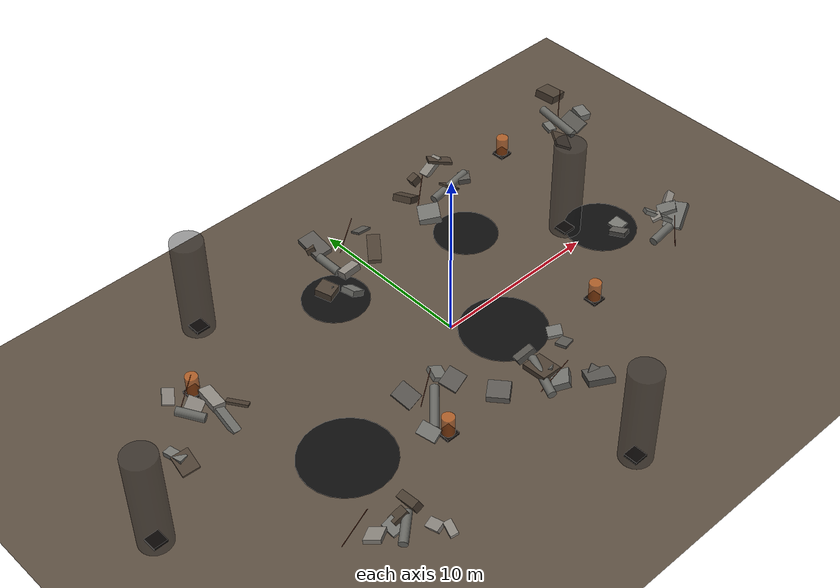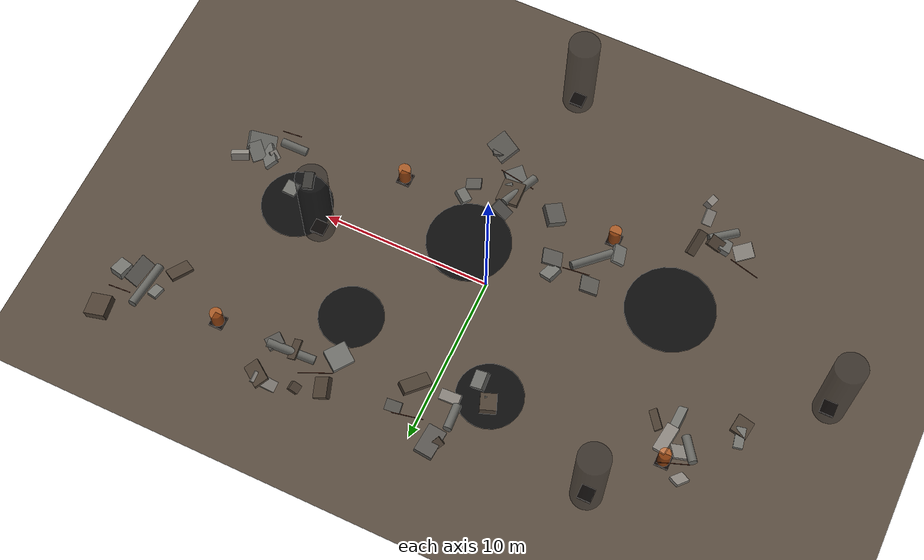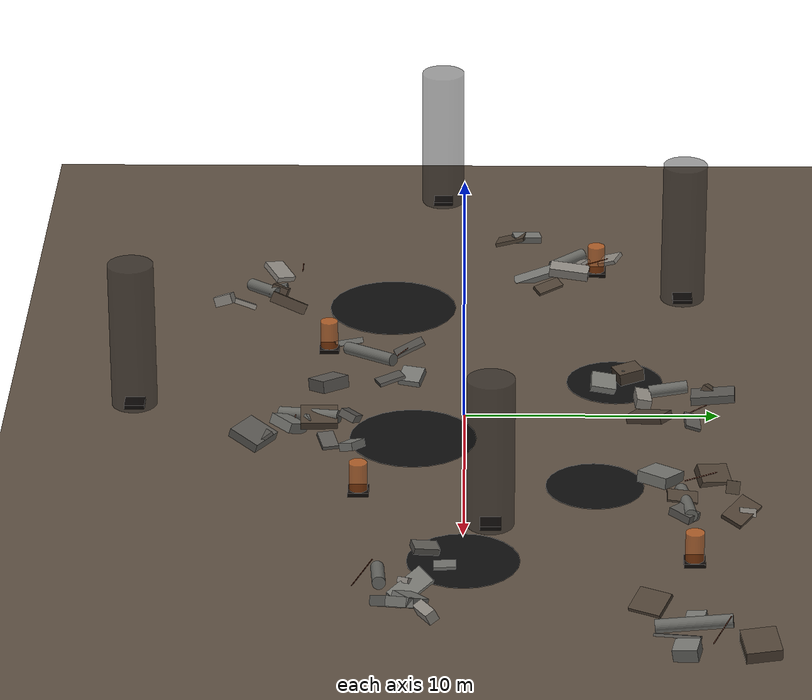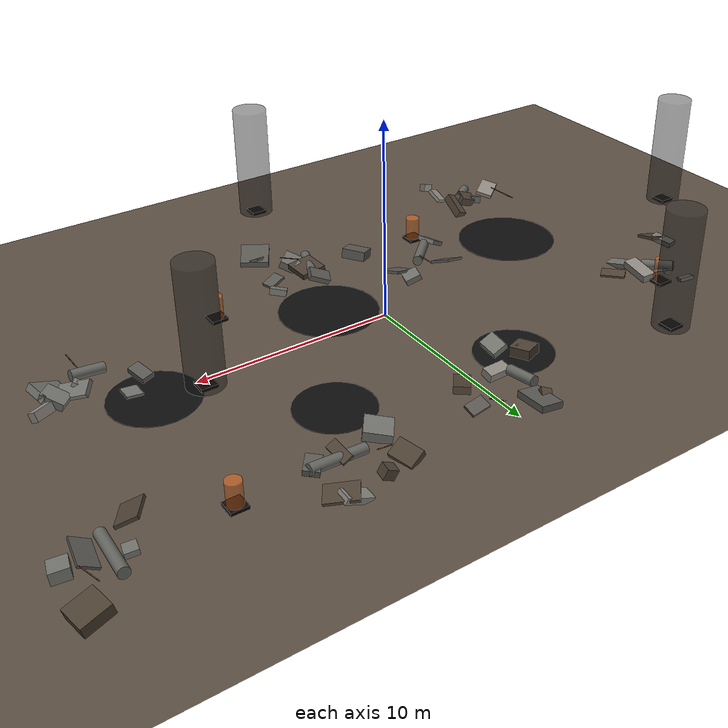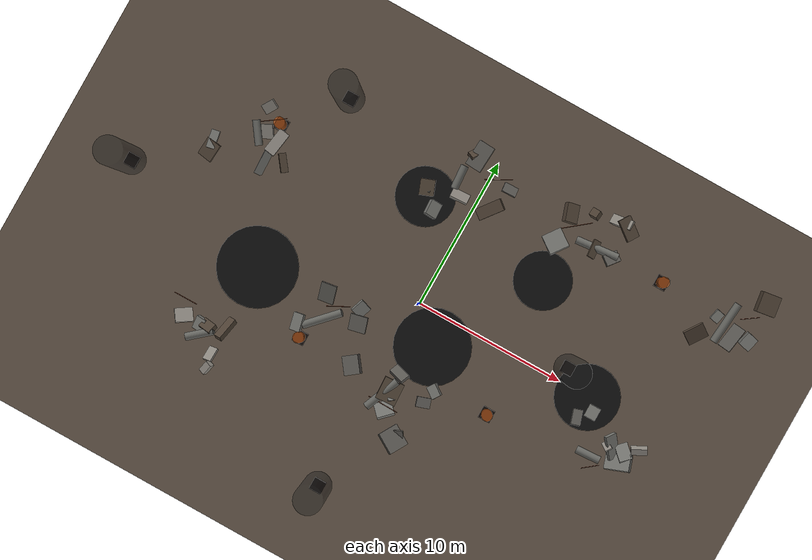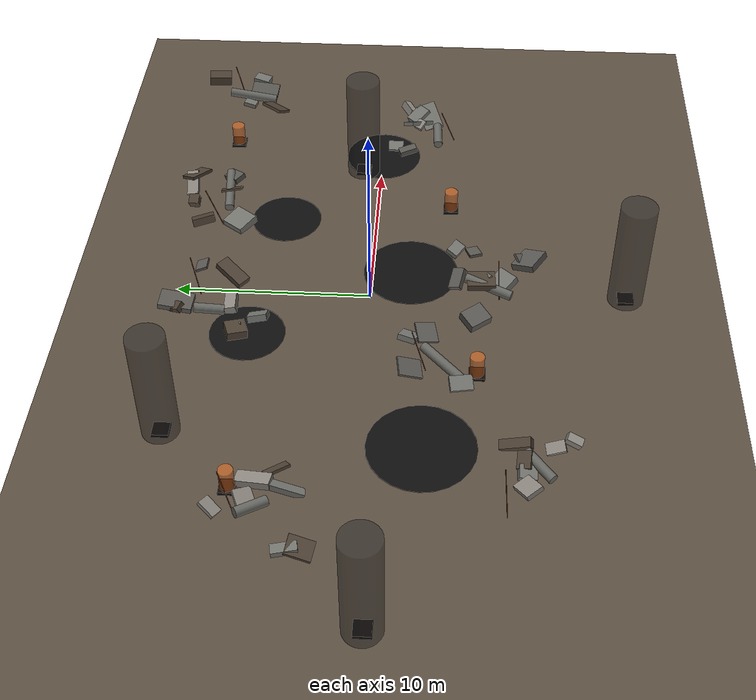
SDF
<sdf version="1.6">
 <world name="default">
  <physics name="default_physics" default="0" type="ode">
   <gravity>0 0 -9.8066</gravity>
   <ode>
    <solver>
     <type>quick</type>
     <iters>10</iters>
     <sor>1.3</sor>
     <use_dynamic_moi_rescaling>0</use_dynamic_moi_rescaling>
    </solver>
    <constraints>
     <cfm>0</cfm>
     <erp>0.2</erp>
     <contact_max_correcting_vel>100</contact_max_correcting_vel>
     <contact_surface_layer>0.001</contact_surface_layer>
    </constraints>
   </ode>
   <max_step_size>0.004</max_step_size>
   <real_time_factor>1</real_time_factor>
   <real_time_update_rate>250</real_time_update_rate>
   <magnetic_field>6.0e-6 2.3e-5 -4.2e-5</magnetic_field>
  </physics>
  <scene><ambient>0.3 0.28 0.27 1</ambient><background>0.45 0.42 0.4 1</background><shadows>1</shadows></scene>
  <model name="ground_plane">
   <static>true</static>
   <link name="link">
    <collision name="collision">
     <geometry><plane><normal>0 0 1</normal><size>100 100</size></plane></geometry>
    </collision>
    <visual name="visual">
     <geometry><plane><normal>0 0 1</normal><size>100 100</size></plane></geometry>
     <material>
      <ambient>0.35 0.3 0.25 1</ambient>
      <diffuse>0.35 0.3 0.25 1</diffuse>
      <specular>0.05 0.05 0.05 1</specular>
     </material>
    </visual>
    <inertial>
     <mass>1</mass>
     <inertia><ixx>1</ixx><ixy>0</ixy><ixz>0</ixz><iyy>1</iyy><iyz>0</iyz><izz>1</izz></inertia>
    </inertial>
   </link>
  </model>
  <model name="rubble_0">
   <static>true</static>
   <pose>-11.76 3.47 0.18 0.08 0.41 0.67</pose>
   <link name="link">
    <collision name="collision"><geometry><box><size>0.47 1.22 0.14</size></box></geometry></collision>
    <visual name="visual">
     <geometry><box><size>0.47 1.22 0.14</size></box></geometry>
     <material>
      <ambient>0.3 0.25 0.2 1</ambient>
      <diffuse>0.3 0.25 0.2 1</diffuse>
      <specular>0.05 0.05 0.05 1</specular>
     </material>
    </visual>
   </link>
  </model>
  <model name="rubble_1">
   <static>true</static>
   <pose>-16.15 1.95 0.38 -0.28 0.13 2.98</pose>
   <link name="link">
    <collision name="collision"><geometry><box><size>0.99 1.23 0.15</size></box></geometry></collision>
    <visual name="visual">
     <geometry><box><size>0.99 1.23 0.15</size></box></geometry>
     <material>
      <ambient>0.3 0.25 0.2 1</ambient>
      <diffuse>0.3 0.25 0.2 1</diffuse>
      <specular>0.05 0.05 0.05 1</specular>
     </material>
    </visual>
   </link>
  </model>
  <model name="rubble_2">
   <static>true</static>
   <pose>-16.25 2.61 0.42 0.04 0.07 1.76</pose>
   <link name="link">
    <collision name="collision"><geometry><box><size>1.18 0.53 0.27</size></box></geometry></collision>
    <visual name="visual">
     <geometry><box><size>1.18 0.53 0.27</size></box></geometry>
     <material>
      <ambient>0.45 0.45 0.43 1</ambient>
      <diffuse>0.45 0.45 0.43 1</diffuse>
      <specular>0.05 0.05 0.05 1</specular>
     </material>
    </visual>
   </link>
  </model>
  <model name="rubble_3">
   <static>true</static>
   <pose>-13.59 4.69 0.32 -0.44 -0.29 2.14</pose>
   <link name="link">
    <collision name="collision"><geometry><box><size>0.92 0.95 0.13</size></box></geometry></collision>
    <visual name="visual">
     <geometry><box><size>0.92 0.95 0.13</size></box></geometry>
     <material>
      <ambient>0.55 0.53 0.5 1</ambient>
      <diffuse>0.55 0.53 0.5 1</diffuse>
      <specular>0.05 0.05 0.05 1</specular>
     </material>
    </visual>
   </link>
  </model>
  <model name="rubble_4">
   <static>true</static>
   <pose>-14.17 6.12 0.35 0.28 -0.42 0.94</pose>
   <link name="link">
    <collision name="collision"><geometry><box><size>0.91 0.65 0.17</size></box></geometry></collision>
    <visual name="visual">
     <geometry><box><size>0.91 0.65 0.17</size></box></geometry>
     <material>
      <ambient>0.55 0.53 0.5 1</ambient>
      <diffuse>0.55 0.53 0.5 1</diffuse>
      <specular>0.05 0.05 0.05 1</specular>
     </material>
    </visual>
   </link>
  </model>
  <model name="rubble_5">
   <static>true</static>
   <pose>-12.85 2.94 0.17 0.26 -0.35 1.54</pose>
   <link name="link">
    <collision name="collision"><geometry><box><size>1.77 0.52 0.27</size></box></geometry></collision>
    <visual name="visual">
     <geometry><box><size>1.77 0.52 0.27</size></box></geometry>
     <material>
      <ambient>0.45 0.45 0.43 1</ambient>
      <diffuse>0.45 0.45 0.43 1</diffuse>
      <specular>0.05 0.05 0.05 1</specular>
     </material>
    </visual>
   </link>
  </model>
  <model name="rubble_6">
   <static>true</static>
   <pose>-12.68 4.37 0.49 0.09 0.08 1.43</pose>
   <link name="link">
    <collision name="collision"><geometry><box><size>1.63 0.71 0.38</size></box></geometry></collision>
    <visual name="visual">
     <geometry><box><size>1.63 0.71 0.38</size></box></geometry>
     <material>
      <ambient>0.55 0.53 0.5 1</ambient>
      <diffuse>0.55 0.53 0.5 1</diffuse>
      <specular>0.05 0.05 0.05 1</specular>
     </material>
    </visual>
   </link>
  </model>
  <model name="column_7">
   <static>true</static>
   <pose>-14.05 4.33 0.35 0 1.45 2.17</pose>
   <link name="link">
    <collision name="collision">
     <geometry><cylinder><radius>0.25</radius><length>1.59</length></cylinder></geometry>
    </collision>
    <visual name="visual">
     <geometry><cylinder><radius>0.25</radius><length>1.59</length></cylinder></geometry>
     <material>
      <ambient>0.4 0.4 0.38 1</ambient>
      <diffuse>0.4 0.4 0.38 1</diffuse>
      <specular>0.05 0.05 0.05 1</specular>
     </material>
    </visual>
   </link>
  </model>
  <model name="rebar_8">
   <static>true</static>
   <pose>-13.56 5.48 0.5 0.3 1.04 0.88</pose>
   <link name="link">
    <collision name="collision">
     <geometry><cylinder><radius>0.02</radius><length>2.2</length></cylinder></geometry>
    </collision>
    <visual name="visual">
     <geometry><cylinder><radius>0.02</radius><length>2.2</length></cylinder></geometry>
     <material>
      <ambient>0.35 0.15 0.08 1</ambient>
      <diffuse>0.35 0.15 0.08 1</diffuse>
      <specular>0.05 0.05 0.05 1</specular>
     </material>
    </visual>
   </link>
  </model>
  <model name="rubble_9">
   <static>true</static>
   <pose>0.94 7.24 0.45 -0.01 -0.28 0.9</pose>
   <link name="link">
    <collision name="collision"><geometry><box><size>1.72 0.76 0.34</size></box></geometry></collision>
    <visual name="visual">
     <geometry><box><size>1.72 0.76 0.34</size></box></geometry>
     <material>
      <ambient>0.3 0.25 0.2 1</ambient>
      <diffuse>0.3 0.25 0.2 1</diffuse>
      <specular>0.05 0.05 0.05 1</specular>
     </material>
    </visual>
   </link>
  </model>
  <model name="rubble_10">
   <static>true</static>
   <pose>-1.55 9.86 0.26 0.38 0.32 2.71</pose>
   <link name="link">
    <collision name="collision"><geometry><box><size>0.51 0.85 0.32</size></box></geometry></collision>
    <visual name="visual">
     <geometry><box><size>0.51 0.85 0.32</size></box></geometry>
     <material>
      <ambient>0.3 0.25 0.2 1</ambient>
      <diffuse>0.3 0.25 0.2 1</diffuse>
      <specular>0.05 0.05 0.05 1</specular>
     </material>
    </visual>
   </link>
  </model>
  <model name="rubble_11">
   <static>true</static>
   <pose>1.43 8.91 0.48 -0.35 0.16 0.04</pose>
   <link name="link">
    <collision name="collision"><geometry><box><size>0.93 0.63 0.13</size></box></geometry></collision>
    <visual name="visual">
     <geometry><box><size>0.93 0.63 0.13</size></box></geometry>
     <material>
      <ambient>0.35 0.34 0.32 1</ambient>
      <diffuse>0.35 0.34 0.32 1</diffuse>
      <specular>0.05 0.05 0.05 1</specular>
     </material>
    </visual>
   </link>
  </model>
  <model name="rubble_12">
   <static>true</static>
   <pose>-2.19 5.52 0.4 0.45 0.19 1.62</pose>
   <link name="link">
    <collision name="collision"><geometry><box><size>0.99 0.77 0.33</size></box></geometry></collision>
    <visual name="visual">
     <geometry><box><size>0.99 0.77 0.33</size></box></geometry>
     <material>
      <ambient>0.45 0.45 0.43 1</ambient>
      <diffuse>0.45 0.45 0.43 1</diffuse>
      <specular>0.05 0.05 0.05 1</specular>
     </material>
    </visual>
   </link>
  </model>
  <model name="rubble_13">
   <static>true</static>
   <pose>-1.22 9.85 0.31 -0.1 -0.11 1.51</pose>
   <link name="link">
    <collision name="collision"><geometry><box><size>1.73 1.08 0.32</size></box></geometry></collision>
    <visual name="visual">
     <geometry><box><size>1.73 1.08 0.32</size></box></geometry>
     <material>
      <ambient>0.35 0.34 0.32 1</ambient>
      <diffuse>0.35 0.34 0.32 1</diffuse>
      <specular>0.05 0.05 0.05 1</specular>
     </material>
    </visual>
   </link>
  </model>
  <model name="rubble_14">
   <static>true</static>
   <pose>-3.16 6.54 0.3 -0.5 -0.35 0.32</pose>
   <link name="link">
    <collision name="collision"><geometry><box><size>0.63 0.74 0.12</size></box></geometry></collision>
    <visual name="visual">
     <geometry><box><size>0.63 0.74 0.12</size></box></geometry>
     <material>
      <ambient>0.45 0.45 0.43 1</ambient>
      <diffuse>0.45 0.45 0.43 1</diffuse>
      <specular>0.05 0.05 0.05 1</specular>
     </material>
    </visual>
   </link>
  </model>
  <model name="rubble_15">
   <static>true</static>
   <pose>-3.15 6.54 0.35 0.1 -0.03 0.36</pose>
   <link name="link">
    <collision name="collision"><geometry><box><size>0.93 1.03 0.48</size></box></geometry></collision>
    <visual name="visual">
     <geometry><box><size>0.93 1.03 0.48</size></box></geometry>
     <material>
      <ambient>0.3 0.25 0.2 1</ambient>
      <diffuse>0.3 0.25 0.2 1</diffuse>
      <specular>0.05 0.05 0.05 1</specular>
     </material>
    </visual>
   </link>
  </model>
  <model name="rubble_16">
   <static>true</static>
   <pose>-1.1 7.06 0.23 -0.02 0.19 1.62</pose>
   <link name="link">
    <collision name="collision"><geometry><box><size>0.6 1.15 0.4</size></box></geometry></collision>
    <visual name="visual">
     <geometry><box><size>0.6 1.15 0.4</size></box></geometry>
     <material>
      <ambient>0.55 0.53 0.5 1</ambient>
      <diffuse>0.55 0.53 0.5 1</diffuse>
      <specular>0.05 0.05 0.05 1</specular>
     </material>
    </visual>
   </link>
  </model>
  <model name="column_17">
   <static>true</static>
   <pose>-1.71 8.09 0.35 0 1.45 1.64</pose>
   <link name="link">
    <collision name="collision">
     <geometry><cylinder><radius>0.25</radius><length>1.54</length></cylinder></geometry>
    </collision>
    <visual name="visual">
     <geometry><cylinder><radius>0.25</radius><length>1.54</length></cylinder></geometry>
     <material>
      <ambient>0.4 0.4 0.38 1</ambient>
      <diffuse>0.4 0.4 0.38 1</diffuse>
      <specular>0.05 0.05 0.05 1</specular>
     </material>
    </visual>
   </link>
  </model>
  <model name="rebar_18">
   <static>true</static>
   <pose>0.44 9.09 0.5 0.3 0.93 0.81</pose>
   <link name="link">
    <collision name="collision">
     <geometry><cylinder><radius>0.02</radius><length>2.2</length></cylinder></geometry>
    </collision>
    <visual name="visual">
     <geometry><cylinder><radius>0.02</radius><length>2.2</length></cylinder></geometry>
     <material>
      <ambient>0.35 0.15 0.08 1</ambient>
      <diffuse>0.35 0.15 0.08 1</diffuse>
      <specular>0.05 0.05 0.05 1</specular>
     </material>
    </visual>
   </link>
  </model>
  <model name="rubble_19">
   <static>true</static>
   <pose>9.04 8.28 0.45 0.14 0.11 2.48</pose>
   <link name="link">
    <collision name="collision"><geometry><box><size>0.71 0.94 0.3</size></box></geometry></collision>
    <visual name="visual">
     <geometry><box><size>0.71 0.94 0.3</size></box></geometry>
     <material>
      <ambient>0.35 0.34 0.32 1</ambient>
      <diffuse>0.35 0.34 0.32 1</diffuse>
      <specular>0.05 0.05 0.05 1</specular>
     </material>
    </visual>
   </link>
  </model>
  <model name="rubble_20">
   <static>true</static>
   <pose>8.53 10.59 0.26 -0.14 -0.47 0.09</pose>
   <link name="link">
    <collision name="collision"><geometry><box><size>1.44 0.63 0.31</size></box></geometry></collision>
    <visual name="visual">
     <geometry><box><size>1.44 0.63 0.31</size></box></geometry>
     <material>
      <ambient>0.55 0.53 0.5 1</ambient>
      <diffuse>0.55 0.53 0.5 1</diffuse>
      <specular>0.05 0.05 0.05 1</specular>
     </material>
    </visual>
   </link>
  </model>
  <model name="rubble_21">
   <static>true</static>
   <pose>5.47 9.53 0.19 -0.15 0.47 0.25</pose>
   <link name="link">
    <collision name="collision"><geometry><box><size>0.88 1.21 0.39</size></box></geometry></collision>
    <visual name="visual">
     <geometry><box><size>0.88 1.21 0.39</size></box></geometry>
     <material>
      <ambient>0.3 0.25 0.2 1</ambient>
      <diffuse>0.3 0.25 0.2 1</diffuse>
      <specular>0.05 0.05 0.05 1</specular>
     </material>
    </visual>
   </link>
  </model>
  <model name="rubble_22">
   <static>true</static>
   <pose>5.48 7.52 0.18 -0.02 0.15 2.51</pose>
   <link name="link">
    <collision name="collision"><geometry><box><size>1.27 1.3 0.44</size></box></geometry></collision>
    <visual name="visual">
     <geometry><box><size>1.27 1.3 0.44</size></box></geometry>
     <material>
      <ambient>0.45 0.45 0.43 1</ambient>
      <diffuse>0.45 0.45 0.43 1</diffuse>
      <specular>0.05 0.05 0.05 1</specular>
     </material>
    </visual>
   </link>
  </model>
  <model name="rubble_23">
   <static>true</static>
   <pose>9.05 10.41 0.54 0.29 -0.17 2.51</pose>
   <link name="link">
    <collision name="collision"><geometry><box><size>1.45 0.88 0.17</size></box></geometry></collision>
    <visual name="visual">
     <geometry><box><size>1.45 0.88 0.17</size></box></geometry>
     <material>
      <ambient>0.3 0.25 0.2 1</ambient>
      <diffuse>0.3 0.25 0.2 1</diffuse>
      <specular>0.05 0.05 0.05 1</specular>
     </material>
    </visual>
   </link>
  </model>
  <model name="rubble_24">
   <static>true</static>
   <pose>6.82 10.22 0.41 -0.47 0.09 1.46</pose>
   <link name="link">
    <collision name="collision"><geometry><box><size>0.52 0.56 0.5</size></box></geometry></collision>
    <visual name="visual">
     <geometry><box><size>0.52 0.56 0.5</size></box></geometry>
     <material>
      <ambient>0.3 0.25 0.2 1</ambient>
      <diffuse>0.3 0.25 0.2 1</diffuse>
      <specular>0.05 0.05 0.05 1</specular>
     </material>
    </visual>
   </link>
  </model>
  <model name="rubble_25">
   <static>true</static>
   <pose>7.79 8.25 0.52 0.47 0.15 1.65</pose>
   <link name="link">
    <collision name="collision"><geometry><box><size>1.17 0.53 0.11</size></box></geometry></collision>
    <visual name="visual">
     <geometry><box><size>1.17 0.53 0.11</size></box></geometry>
     <material>
      <ambient>0.3 0.25 0.2 1</ambient>
      <diffuse>0.3 0.25 0.2 1</diffuse>
      <specular>0.05 0.05 0.05 1</specular>
     </material>
    </visual>
   </link>
  </model>
  <model name="column_26">
   <static>true</static>
   <pose>7.97 8.39 0.35 0 1.45 0.09</pose>
   <link name="link">
    <collision name="collision">
     <geometry><cylinder><radius>0.25</radius><length>2.81</length></cylinder></geometry>
    </collision>
    <visual name="visual">
     <geometry><cylinder><radius>0.25</radius><length>2.81</length></cylinder></geometry>
     <material>
      <ambient>0.4 0.4 0.38 1</ambient>
      <diffuse>0.4 0.4 0.38 1</diffuse>
      <specular>0.05 0.05 0.05 1</specular>
     </material>
    </visual>
   </link>
  </model>
  <model name="rebar_27">
   <static>true</static>
   <pose>6.14 9.0 0.5 0.3 0.99 1.01</pose>
   <link name="link">
    <collision name="collision">
     <geometry><cylinder><radius>0.02</radius><length>2.2</length></cylinder></geometry>
    </collision>
    <visual name="visual">
     <geometry><cylinder><radius>0.02</radius><length>2.2</length></cylinder></geometry>
     <material>
      <ambient>0.35 0.15 0.08 1</ambient>
      <diffuse>0.35 0.15 0.08 1</diffuse>
      <specular>0.05 0.05 0.05 1</specular>
     </material>
    </visual>
   </link>
  </model>
  <model name="rubble_28">
   <static>true</static>
   <pose>2.67 -8.2 0.5 0.32 0.02 2.6</pose>
   <link name="link">
    <collision name="collision"><geometry><box><size>1.44 1.3 0.36</size></box></geometry></collision>
    <visual name="visual">
     <geometry><box><size>1.44 1.3 0.36</size></box></geometry>
     <material>
      <ambient>0.35 0.34 0.32 1</ambient>
      <diffuse>0.35 0.34 0.32 1</diffuse>
      <specular>0.05 0.05 0.05 1</specular>
     </material>
    </visual>
   </link>
  </model>
  <model name="rubble_29">
   <static>true</static>
   <pose>1.16 -5.88 0.34 -0.5 0.3 0.54</pose>
   <link name="link">
    <collision name="collision"><geometry><box><size>0.43 0.84 0.17</size></box></geometry></collision>
    <visual name="visual">
     <geometry><box><size>0.43 0.84 0.17</size></box></geometry>
     <material>
      <ambient>0.45 0.45 0.43 1</ambient>
      <diffuse>0.45 0.45 0.43 1</diffuse>
      <specular>0.05 0.05 0.05 1</specular>
     </material>
    </visual>
   </link>
  </model>
  <model name="rubble_30">
   <static>true</static>
   <pose>1.28 -6.87 0.26 -0.39 0.06 0.78</pose>
   <link name="link">
    <collision name="collision"><geometry><box><size>1.13 0.96 0.41</size></box></geometry></collision>
    <visual name="visual">
     <geometry><box><size>1.13 0.96 0.41</size></box></geometry>
     <material>
      <ambient>0.45 0.45 0.43 1</ambient>
      <diffuse>0.45 0.45 0.43 1</diffuse>
      <specular>0.05 0.05 0.05 1</specular>
     </material>
    </visual>
   </link>
  </model>
  <model name="rubble_31">
   <static>true</static>
   <pose>1.04 -5.69 0.43 0.11 0.01 1.61</pose>
   <link name="link">
    <collision name="collision"><geometry><box><size>1.46 1.31 0.28</size></box></geometry></collision>
    <visual name="visual">
     <geometry><box><size>1.46 1.31 0.28</size></box></geometry>
     <material>
      <ambient>0.3 0.25 0.2 1</ambient>
      <diffuse>0.3 0.25 0.2 1</diffuse>
      <specular>0.05 0.05 0.05 1</specular>
     </material>
    </visual>
   </link>
  </model>
  <model name="rubble_32">
   <static>true</static>
   <pose>1.04 -4.46 0.51 0.38 0.43 2.9</pose>
   <link name="link">
    <collision name="collision"><geometry><box><size>1.11 0.65 0.31</size></box></geometry></collision>
    <visual name="visual">
     <geometry><box><size>1.11 0.65 0.31</size></box></geometry>
     <material>
      <ambient>0.35 0.34 0.32 1</ambient>
      <diffuse>0.35 0.34 0.32 1</diffuse>
      <specular>0.05 0.05 0.05 1</specular>
     </material>
    </visual>
   </link>
  </model>
  <model name="rubble_33">
   <static>true</static>
   <pose>2.7 -7.81 0.46 -0.26 -0.43 2.1</pose>
   <link name="link">
    <collision name="collision"><geometry><box><size>0.57 0.84 0.13</size></box></geometry></collision>
    <visual name="visual">
     <geometry><box><size>0.57 0.84 0.13</size></box></geometry>
     <material>
      <ambient>0.35 0.34 0.32 1</ambient>
      <diffuse>0.35 0.34 0.32 1</diffuse>
      <specular>0.05 0.05 0.05 1</specular>
     </material>
    </visual>
   </link>
  </model>
  <model name="rubble_34">
   <static>true</static>
   <pose>3.2 -5.28 0.5 -0.03 0.25 0.3</pose>
   <link name="link">
    <collision name="collision"><geometry><box><size>0.91 0.65 0.15</size></box></geometry></collision>
    <visual name="visual">
     <geometry><box><size>0.91 0.65 0.15</size></box></geometry>
     <material>
      <ambient>0.35 0.34 0.32 1</ambient>
      <diffuse>0.35 0.34 0.32 1</diffuse>
      <specular>0.05 0.05 0.05 1</specular>
     </material>
    </visual>
   </link>
  </model>
  <model name="rubble_35">
   <static>true</static>
   <pose>3.45 -4.34 0.44 -0.16 -0.3 1.0</pose>
   <link name="link">
    <collision name="collision"><geometry><box><size>0.63 0.83 0.31</size></box></geometry></collision>
    <visual name="visual">
     <geometry><box><size>0.63 0.83 0.31</size></box></geometry>
     <material>
      <ambient>0.45 0.45 0.43 1</ambient>
      <diffuse>0.45 0.45 0.43 1</diffuse>
      <specular>0.05 0.05 0.05 1</specular>
     </material>
    </visual>
   </link>
  </model>
  <model name="column_36">
   <static>true</static>
   <pose>0.68 -6.08 0.35 0 1.45 1.19</pose>
   <link name="link">
    <collision name="collision">
     <geometry><cylinder><radius>0.25</radius><length>2.55</length></cylinder></geometry>
    </collision>
    <visual name="visual">
     <geometry><cylinder><radius>0.25</radius><length>2.55</length></cylinder></geometry>
     <material>
      <ambient>0.4 0.4 0.38 1</ambient>
      <diffuse>0.4 0.4 0.38 1</diffuse>
      <specular>0.05 0.05 0.05 1</specular>
     </material>
    </visual>
   </link>
  </model>
  <model name="rebar_37">
   <static>true</static>
   <pose>1.05 -6.61 0.5 0.3 1.16 0.35</pose>
   <link name="link">
    <collision name="collision">
     <geometry><cylinder><radius>0.02</radius><length>2.2</length></cylinder></geometry>
    </collision>
    <visual name="visual">
     <geometry><cylinder><radius>0.02</radius><length>2.2</length></cylinder></geometry>
     <material>
      <ambient>0.35 0.15 0.08 1</ambient>
      <diffuse>0.35 0.15 0.08 1</diffuse>
      <specular>0.05 0.05 0.05 1</specular>
     </material>
    </visual>
   </link>
  </model>
  <model name="rubble_38">
   <static>true</static>
   <pose>-9.64 -9.98 0.51 -0.23 -0.37 1.33</pose>
   <link name="link">
    <collision name="collision"><geometry><box><size>0.77 0.44 0.41</size></box></geometry></collision>
    <visual name="visual">
     <geometry><box><size>0.77 0.44 0.41</size></box></geometry>
     <material>
      <ambient>0.55 0.53 0.5 1</ambient>
      <diffuse>0.55 0.53 0.5 1</diffuse>
      <specular>0.05 0.05 0.05 1</specular>
     </material>
    </visual>
   </link>
  </model>
  <model name="rubble_39">
   <static>true</static>
   <pose>-12.47 -7.82 0.51 -0.22 0.3 0.58</pose>
   <link name="link">
    <collision name="collision"><geometry><box><size>1.12 0.89 0.23</size></box></geometry></collision>
    <visual name="visual">
     <geometry><box><size>1.12 0.89 0.23</size></box></geometry>
     <material>
      <ambient>0.55 0.53 0.5 1</ambient>
      <diffuse>0.55 0.53 0.5 1</diffuse>
      <specular>0.05 0.05 0.05 1</specular>
     </material>
    </visual>
   </link>
  </model>
  <model name="rubble_40">
   <static>true</static>
   <pose>-9.81 -7.33 0.29 -0.43 0.36 1.42</pose>
   <link name="link">
    <collision name="collision"><geometry><box><size>1.52 0.48 0.44</size></box></geometry></collision>
    <visual name="visual">
     <geometry><box><size>1.52 0.48 0.44</size></box></geometry>
     <material>
      <ambient>0.3 0.25 0.2 1</ambient>
      <diffuse>0.3 0.25 0.2 1</diffuse>
      <specular>0.05 0.05 0.05 1</specular>
     </material>
    </visual>
   </link>
  </model>
  <model name="rubble_41">
   <static>true</static>
   <pose>-9.87 -9.16 0.23 -0.39 -0.34 0.16</pose>
   <link name="link">
    <collision name="collision"><geometry><box><size>0.58 0.93 0.2</size></box></geometry></collision>
    <visual name="visual">
     <geometry><box><size>0.58 0.93 0.2</size></box></geometry>
     <material>
      <ambient>0.55 0.53 0.5 1</ambient>
      <diffuse>0.55 0.53 0.5 1</diffuse>
      <specular>0.05 0.05 0.05 1</specular>
     </material>
    </visual>
   </link>
  </model>
  <model name="rubble_42">
   <static>true</static>
   <pose>-11.36 -7.84 0.16 -0.23 0.3 3.12</pose>
   <link name="link">
    <collision name="collision"><geometry><box><size>0.69 0.85 0.37</size></box></geometry></collision>
    <visual name="visual">
     <geometry><box><size>0.69 0.85 0.37</size></box></geometry>
     <material>
      <ambient>0.45 0.45 0.43 1</ambient>
      <diffuse>0.45 0.45 0.43 1</diffuse>
      <specular>0.05 0.05 0.05 1</specular>
     </material>
    </visual>
   </link>
  </model>
  <model name="rubble_43">
   <static>true</static>
   <pose>-10.83 -7.74 0.35 -0.39 0.32 1.36</pose>
   <link name="link">
    <collision name="collision"><geometry><box><size>0.67 0.87 0.47</size></box></geometry></collision>
    <visual name="visual">
     <geometry><box><size>0.67 0.87 0.47</size></box></geometry>
     <material>
      <ambient>0.3 0.25 0.2 1</ambient>
      <diffuse>0.3 0.25 0.2 1</diffuse>
      <specular>0.05 0.05 0.05 1</specular>
     </material>
    </visual>
   </link>
  </model>
  <model name="column_44">
   <static>true</static>
   <pose>-11.06 -8.38 0.35 0 1.45 0.71</pose>
   <link name="link">
    <collision name="collision">
     <geometry><cylinder><radius>0.25</radius><length>1.82</length></cylinder></geometry>
    </collision>
    <visual name="visual">
     <geometry><cylinder><radius>0.25</radius><length>1.82</length></cylinder></geometry>
     <material>
      <ambient>0.4 0.4 0.38 1</ambient>
      <diffuse>0.4 0.4 0.38 1</diffuse>
      <specular>0.05 0.05 0.05 1</specular>
     </material>
    </visual>
   </link>
  </model>
  <model name="rebar_45">
   <static>true</static>
   <pose>-12.9 -6.85 0.5 0.3 0.96 0.43</pose>
   <link name="link">
    <collision name="collision">
     <geometry><cylinder><radius>0.02</radius><length>2.2</length></cylinder></geometry>
    </collision>
    <visual name="visual">
     <geometry><cylinder><radius>0.02</radius><length>2.2</length></cylinder></geometry>
     <material>
      <ambient>0.35 0.15 0.08 1</ambient>
      <diffuse>0.35 0.15 0.08 1</diffuse>
      <specular>0.05 0.05 0.05 1</specular>
     </material>
    </visual>
   </link>
  </model>
  <model name="rubble_46">
   <static>true</static>
   <pose>16.41 -1.32 0.3 -0.07 -0.44 2.09</pose>
   <link name="link">
    <collision name="collision"><geometry><box><size>0.42 1.03 0.45</size></box></geometry></collision>
    <visual name="visual">
     <geometry><box><size>0.42 1.03 0.45</size></box></geometry>
     <material>
      <ambient>0.55 0.53 0.5 1</ambient>
      <diffuse>0.55 0.53 0.5 1</diffuse>
      <specular>0.05 0.05 0.05 1</specular>
     </material>
    </visual>
   </link>
  </model>
  <model name="rubble_47">
   <static>true</static>
   <pose>14.49 -2.04 0.54 -0.5 -0.14 1.03</pose>
   <link name="link">
    <collision name="collision"><geometry><box><size>0.46 0.59 0.21</size></box></geometry></collision>
    <visual name="visual">
     <geometry><box><size>0.46 0.59 0.21</size></box></geometry>
     <material>
      <ambient>0.55 0.53 0.5 1</ambient>
      <diffuse>0.55 0.53 0.5 1</diffuse>
      <specular>0.05 0.05 0.05 1</specular>
     </material>
    </visual>
   </link>
  </model>
  <model name="rubble_48">
   <static>true</static>
   <pose>12.72 -0.67 0.23 -0.12 -0.03 1.58</pose>
   <link name="link">
    <collision name="collision"><geometry><box><size>0.83 0.76 0.1</size></box></geometry></collision>
    <visual name="visual">
     <geometry><box><size>0.83 0.76 0.1</size></box></geometry>
     <material>
      <ambient>0.45 0.45 0.43 1</ambient>
      <diffuse>0.45 0.45 0.43 1</diffuse>
      <specular>0.05 0.05 0.05 1</specular>
     </material>
    </visual>
   </link>
  </model>
  <model name="rubble_49">
   <static>true</static>
   <pose>11.95 -1.41 0.53 -0.2 0.13 0.27</pose>
   <link name="link">
    <collision name="collision"><geometry><box><size>0.6 0.99 0.26</size></box></geometry></collision>
    <visual name="visual">
     <geometry><box><size>0.6 0.99 0.26</size></box></geometry>
     <material>
      <ambient>0.35 0.34 0.32 1</ambient>
      <diffuse>0.35 0.34 0.32 1</diffuse>
      <specular>0.05 0.05 0.05 1</specular>
     </material>
    </visual>
   </link>
  </model>
  <model name="rubble_50">
   <static>true</static>
   <pose>14.79 -1.92 0.41 0.48 -0.35 2.27</pose>
   <link name="link">
    <collision name="collision"><geometry><box><size>1.63 0.79 0.23</size></box></geometry></collision>
    <visual name="visual">
     <geometry><box><size>1.63 0.79 0.23</size></box></geometry>
     <material>
      <ambient>0.45 0.45 0.43 1</ambient>
      <diffuse>0.45 0.45 0.43 1</diffuse>
      <specular>0.05 0.05 0.05 1</specular>
     </material>
    </visual>
   </link>
  </model>
  <model name="rubble_51">
   <static>true</static>
   <pose>15.62 -1.92 0.38 0.01 0.41 2.36</pose>
   <link name="link">
    <collision name="collision"><geometry><box><size>1.12 0.83 0.38</size></box></geometry></collision>
    <visual name="visual">
     <geometry><box><size>1.12 0.83 0.38</size></box></geometry>
     <material>
      <ambient>0.45 0.45 0.43 1</ambient>
      <diffuse>0.45 0.45 0.43 1</diffuse>
      <specular>0.05 0.05 0.05 1</specular>
     </material>
    </visual>
   </link>
  </model>
  <model name="rubble_52">
   <static>true</static>
   <pose>15.63 -2.58 0.29 -0.27 -0.47 0.42</pose>
   <link name="link">
    <collision name="collision"><geometry><box><size>1.65 1.08 0.38</size></box></geometry></collision>
    <visual name="visual">
     <geometry><box><size>1.65 1.08 0.38</size></box></geometry>
     <material>
      <ambient>0.45 0.45 0.43 1</ambient>
      <diffuse>0.45 0.45 0.43 1</diffuse>
      <specular>0.05 0.05 0.05 1</specular>
     </material>
    </visual>
   </link>
  </model>
  <model name="column_53">
   <static>true</static>
   <pose>13.75 -3.1 0.35 0 1.45 0.06</pose>
   <link name="link">
    <collision name="collision">
     <geometry><cylinder><radius>0.25</radius><length>1.58</length></cylinder></geometry>
    </collision>
    <visual name="visual">
     <geometry><cylinder><radius>0.25</radius><length>1.58</length></cylinder></geometry>
     <material>
      <ambient>0.4 0.4 0.38 1</ambient>
      <diffuse>0.4 0.4 0.38 1</diffuse>
      <specular>0.05 0.05 0.05 1</specular>
     </material>
    </visual>
   </link>
  </model>
  <model name="rebar_54">
   <static>true</static>
   <pose>14.09 -3.77 0.5 0.3 0.54 1.42</pose>
   <link name="link">
    <collision name="collision">
     <geometry><cylinder><radius>0.02</radius><length>2.2</length></cylinder></geometry>
    </collision>
    <visual name="visual">
     <geometry><cylinder><radius>0.02</radius><length>2.2</length></cylinder></geometry>
     <material>
      <ambient>0.35 0.15 0.08 1</ambient>
      <diffuse>0.35 0.15 0.08 1</diffuse>
      <specular>0.05 0.05 0.05 1</specular>
     </material>
    </visual>
   </link>
  </model>
  <model name="rubble_55">
   <static>true</static>
   <pose>-2.76 -2.99 0.26 0.24 -0.25 0.23</pose>
   <link name="link">
    <collision name="collision"><geometry><box><size>1.15 1.06 0.13</size></box></geometry></collision>
    <visual name="visual">
     <geometry><box><size>1.15 1.06 0.13</size></box></geometry>
     <material>
      <ambient>0.35 0.34 0.32 1</ambient>
      <diffuse>0.35 0.34 0.32 1</diffuse>
      <specular>0.05 0.05 0.05 1</specular>
     </material>
    </visual>
   </link>
  </model>
  <model name="rubble_56">
   <static>true</static>
   <pose>-5.35 -2.25 0.4 0.41 -0.21 0.15</pose>
   <link name="link">
    <collision name="collision"><geometry><box><size>1.04 1.25 0.13</size></box></geometry></collision>
    <visual name="visual">
     <geometry><box><size>1.04 1.25 0.13</size></box></geometry>
     <material>
      <ambient>0.35 0.34 0.32 1</ambient>
      <diffuse>0.35 0.34 0.32 1</diffuse>
      <specular>0.05 0.05 0.05 1</specular>
     </material>
    </visual>
   </link>
  </model>
  <model name="rubble_57">
   <static>true</static>
   <pose>-6.11 -4.76 0.26 0.07 -0.49 0.19</pose>
   <link name="link">
    <collision name="collision"><geometry><box><size>0.76 1.14 0.22</size></box></geometry></collision>
    <visual name="visual">
     <geometry><box><size>0.76 1.14 0.22</size></box></geometry>
     <material>
      <ambient>0.45 0.45 0.43 1</ambient>
      <diffuse>0.45 0.45 0.43 1</diffuse>
      <specular>0.05 0.05 0.05 1</specular>
     </material>
    </visual>
   </link>
  </model>
  <model name="rubble_58">
   <static>true</static>
   <pose>-3.04 -2.12 0.23 -0.03 -0.38 2.81</pose>
   <link name="link">
    <collision name="collision"><geometry><box><size>0.81 0.92 0.29</size></box></geometry></collision>
    <visual name="visual">
     <geometry><box><size>0.81 0.92 0.29</size></box></geometry>
     <material>
      <ambient>0.45 0.45 0.43 1</ambient>
      <diffuse>0.45 0.45 0.43 1</diffuse>
      <specular>0.05 0.05 0.05 1</specular>
     </material>
    </visual>
   </link>
  </model>
  <model name="rubble_59">
   <static>true</static>
   <pose>-1.82 -5.41 0.53 -0.05 -0.23 0.66</pose>
   <link name="link">
    <collision name="collision"><geometry><box><size>1.04 1.22 0.49</size></box></geometry></collision>
    <visual name="visual">
     <geometry><box><size>1.04 1.22 0.49</size></box></geometry>
     <material>
      <ambient>0.35 0.34 0.32 1</ambient>
      <diffuse>0.35 0.34 0.32 1</diffuse>
      <specular>0.05 0.05 0.05 1</specular>
     </material>
    </visual>
   </link>
  </model>
  <model name="column_60">
   <static>true</static>
   <pose>-4.85 -3.82 0.35 0 1.45 0.81</pose>
   <link name="link">
    <collision name="collision">
     <geometry><cylinder><radius>0.25</radius><length>2.62</length></cylinder></geometry>
    </collision>
    <visual name="visual">
     <geometry><cylinder><radius>0.25</radius><length>2.62</length></cylinder></geometry>
     <material>
      <ambient>0.4 0.4 0.38 1</ambient>
      <diffuse>0.4 0.4 0.38 1</diffuse>
      <specular>0.05 0.05 0.05 1</specular>
     </material>
    </visual>
   </link>
  </model>
  <model name="rebar_61">
   <static>true</static>
   <pose>-4.42 -2.69 0.5 0.3 0.87 0.87</pose>
   <link name="link">
    <collision name="collision">
     <geometry><cylinder><radius>0.02</radius><length>2.2</length></cylinder></geometry>
    </collision>
    <visual name="visual">
     <geometry><cylinder><radius>0.02</radius><length>2.2</length></cylinder></geometry>
     <material>
      <ambient>0.35 0.15 0.08 1</ambient>
      <diffuse>0.35 0.15 0.08 1</diffuse>
      <specular>0.05 0.05 0.05 1</specular>
     </material>
    </visual>
   </link>
  </model>
  <model name="rubble_62">
   <static>true</static>
   <pose>18.02 7.66 0.27 -0.5 -0.01 1.42</pose>
   <link name="link">
    <collision name="collision"><geometry><box><size>1.66 0.89 0.11</size></box></geometry></collision>
    <visual name="visual">
     <geometry><box><size>1.66 0.89 0.11</size></box></geometry>
     <material>
      <ambient>0.35 0.34 0.32 1</ambient>
      <diffuse>0.35 0.34 0.32 1</diffuse>
      <specular>0.05 0.05 0.05 1</specular>
     </material>
    </visual>
   </link>
  </model>
  <model name="rubble_63">
   <static>true</static>
   <pose>16.58 8.38 0.23 -0.16 -0.1 2.95</pose>
   <link name="link">
    <collision name="collision"><geometry><box><size>0.57 0.73 0.23</size></box></geometry></collision>
    <visual name="visual">
     <geometry><box><size>0.57 0.73 0.23</size></box></geometry>
     <material>
      <ambient>0.45 0.45 0.43 1</ambient>
      <diffuse>0.45 0.45 0.43 1</diffuse>
      <specular>0.05 0.05 0.05 1</specular>
     </material>
    </visual>
   </link>
  </model>
  <model name="rubble_64">
   <static>true</static>
   <pose>19.01 7.95 0.26 0.09 -0.14 1.34</pose>
   <link name="link">
    <collision name="collision"><geometry><box><size>0.92 0.79 0.5</size></box></geometry></collision>
    <visual name="visual">
     <geometry><box><size>0.92 0.79 0.5</size></box></geometry>
     <material>
      <ambient>0.45 0.45 0.43 1</ambient>
      <diffuse>0.45 0.45 0.43 1</diffuse>
      <specular>0.05 0.05 0.05 1</specular>
     </material>
    </visual>
   </link>
  </model>
  <model name="rubble_65">
   <static>true</static>
   <pose>15.9 6.76 0.46 0.47 -0.06 0.99</pose>
   <link name="link">
    <collision name="collision"><geometry><box><size>1.33 1.03 0.16</size></box></geometry></collision>
    <visual name="visual">
     <geometry><box><size>1.33 1.03 0.16</size></box></geometry>
     <material>
      <ambient>0.3 0.25 0.2 1</ambient>
      <diffuse>0.3 0.25 0.2 1</diffuse>
      <specular>0.05 0.05 0.05 1</specular>
     </material>
    </visual>
   </link>
  </model>
  <model name="rubble_66">
   <static>true</static>
   <pose>18.92 10.56 0.44 0.05 0.22 0.16</pose>
   <link name="link">
    <collision name="collision"><geometry><box><size>1.28 1.31 0.48</size></box></geometry></collision>
    <visual name="visual">
     <geometry><box><size>1.28 1.31 0.48</size></box></geometry>
     <material>
      <ambient>0.3 0.25 0.2 1</ambient>
      <diffuse>0.3 0.25 0.2 1</diffuse>
      <specular>0.05 0.05 0.05 1</specular>
     </material>
    </visual>
   </link>
  </model>
  <model name="column_67">
   <static>true</static>
   <pose>17.23 8.28 0.35 0 1.45 1.51</pose>
   <link name="link">
    <collision name="collision">
     <geometry><cylinder><radius>0.25</radius><length>2.8</length></cylinder></geometry>
    </collision>
    <visual name="visual">
     <geometry><cylinder><radius>0.25</radius><length>2.8</length></cylinder></geometry>
     <material>
      <ambient>0.4 0.4 0.38 1</ambient>
      <diffuse>0.4 0.4 0.38 1</diffuse>
      <specular>0.05 0.05 0.05 1</specular>
     </material>
    </visual>
   </link>
  </model>
  <model name="rebar_68">
   <static>true</static>
   <pose>18.24 9.15 0.5 0.3 0.45 1.29</pose>
   <link name="link">
    <collision name="collision">
     <geometry><cylinder><radius>0.02</radius><length>2.2</length></cylinder></geometry>
    </collision>
    <visual name="visual">
     <geometry><cylinder><radius>0.02</radius><length>2.2</length></cylinder></geometry>
     <material>
      <ambient>0.35 0.15 0.08 1</ambient>
      <diffuse>0.35 0.15 0.08 1</diffuse>
      <specular>0.05 0.05 0.05 1</specular>
     </material>
    </visual>
   </link>
  </model>
  <model name="scorch_0">
   <static>true</static>
   <pose>-3 6 0.005 0 0 0</pose>
   <link name="link">
    <collision name="collision">
     <geometry><cylinder><radius>1.9226190592844619</radius><length>0.01</length></cylinder></geometry>
    </collision>
    <visual name="visual">
     <geometry><cylinder><radius>1.9226190592844619</radius><length>0.01</length></cylinder></geometry>
     <material>
      <ambient>0.05 0.05 0.05 1</ambient>
      <diffuse>0.05 0.05 0.05 1</diffuse>
      <specular>0.05 0.05 0.05 1</specular>
     </material>
    </visual>
   </link>
  </model>
  <model name="scorch_1">
   <static>true</static>
   <pose>6 5 0.005 0 0 0</pose>
   <link name="link">
    <collision name="collision">
     <geometry><cylinder><radius>1.8836141683798189</radius><length>0.01</length></cylinder></geometry>
    </collision>
    <visual name="visual">
     <geometry><cylinder><radius>1.8836141683798189</radius><length>0.01</length></cylinder></geometry>
     <material>
      <ambient>0.05 0.05 0.05 1</ambient>
      <diffuse>0.05 0.05 0.05 1</diffuse>
      <specular>0.05 0.05 0.05 1</specular>
     </material>
    </visual>
   </link>
  </model>
  <model name="scorch_2">
   <static>true</static>
   <pose>-10 -3 0.005 0 0 0</pose>
   <link name="link">
    <collision name="collision">
     <geometry><cylinder><radius>2.6081179191503248</radius><length>0.01</length></cylinder></geometry>
    </collision>
    <visual name="visual">
     <geometry><cylinder><radius>2.6081179191503248</radius><length>0.01</length></cylinder></geometry>
     <material>
      <ambient>0.05 0.05 0.05 1</ambient>
      <diffuse>0.05 0.05 0.05 1</diffuse>
      <specular>0.05 0.05 0.05 1</specular>
     </material>
    </visual>
   </link>
  </model>
  <model name="scorch_3">
   <static>true</static>
   <pose>2 -2 0.005 0 0 0</pose>
   <link name="link">
    <collision name="collision">
     <geometry><cylinder><radius>2.479226737396818</radius><length>0.01</length></cylinder></geometry>
    </collision>
    <visual name="visual">
     <geometry><cylinder><radius>2.479226737396818</radius><length>0.01</length></cylinder></geometry>
     <material>
      <ambient>0.05 0.05 0.05 1</ambient>
      <diffuse>0.05 0.05 0.05 1</diffuse>
      <specular>0.05 0.05 0.05 1</specular>
     </material>
    </visual>
   </link>
  </model>
  <model name="scorch_4">
   <static>true</static>
   <pose>12 0 0.005 0 0 0</pose>
   <link name="link">
    <collision name="collision">
     <geometry><cylinder><radius>2.109313897669263</radius><length>0.01</length></cylinder></geometry>
    </collision>
    <visual name="visual">
     <geometry><cylinder><radius>2.109313897669263</radius><length>0.01</length></cylinder></geometry>
     <material>
      <ambient>0.05 0.05 0.05 1</ambient>
      <diffuse>0.05 0.05 0.05 1</diffuse>
      <specular>0.05 0.05 0.05 1</specular>
     </material>
    </visual>
   </link>
  </model>
  <model name="fire_1">
   <static>true</static>
   <pose>-13 5.5 0.3 0 0 0</pose>
   <link name="link">
    <visual name="ember">
     <geometry><box><size>0.8 0.8 0.15</size></box></geometry>
     <material>
      <ambient>0.05 0.03 0.02 1</ambient>
      <diffuse>0.05 0.03 0.02 1</diffuse>
      <emissive>0.6 0.15 0.02 1</emissive>
     </material>
    </visual>
    <light name="glow" type="point">
     <pose>0 0 1.0 0 0 0</pose>
     <cast_shadows>false</cast_shadows>
     <diffuse>1 0.5 0.15 1</diffuse>
     <specular>0.3 0.15 0.05 1</specular>
     <attenuation>
      <range>12</range>
      <constant>0.3</constant>
      <linear>0.1</linear>
      <quadratic>0.02</quadratic>
     </attenuation>
    </light>
    <visual name="plume">
     <pose>0 0 0.6 0 0 0</pose>
     <geometry><cylinder><radius>0.35</radius><length>1.2</length></cylinder></geometry>
     <material>
      <ambient>1 0.45 0.1 0.5</ambient>
      <diffuse>1 0.45 0.1 0.5</diffuse>
      <emissive>1 0.4 0.05 1</emissive>
     </material>
     <transparency>0.5</transparency>
     <cast_shadows>0</cast_shadows>
    </visual>
   </link>
  </model>
  <model name="fire_2">
   <static>true</static>
   <pose>7 -4.0 0.3 0 0 0</pose>
   <link name="link">
    <visual name="ember">
     <geometry><box><size>0.8 0.8 0.15</size></box></geometry>
     <material>
      <ambient>0.05 0.03 0.02 1</ambient>
      <diffuse>0.05 0.03 0.02 1</diffuse>
      <emissive>0.6 0.15 0.02 1</emissive>
     </material>
    </visual>
    <light name="glow" type="point">
     <pose>0 0 1.0 0 0 0</pose>
     <cast_shadows>false</cast_shadows>
     <diffuse>1 0.5 0.15 1</diffuse>
     <specular>0.3 0.15 0.05 1</specular>
     <attenuation>
      <range>12</range>
      <constant>0.3</constant>
      <linear>0.1</linear>
      <quadratic>0.02</quadratic>
     </attenuation>
    </light>
    <visual name="plume">
     <pose>0 0 0.6 0 0 0</pose>
     <geometry><cylinder><radius>0.35</radius><length>1.2</length></cylinder></geometry>
     <material>
      <ambient>1 0.45 0.1 0.5</ambient>
      <diffuse>1 0.45 0.1 0.5</diffuse>
      <emissive>1 0.4 0.05 1</emissive>
     </material>
     <transparency>0.5</transparency>
     <cast_shadows>0</cast_shadows>
    </visual>
   </link>
  </model>
  <model name="fire_3">
   <static>true</static>
   <pose>12.5 8.5 0.3 0 0 0</pose>
   <link name="link">
    <visual name="ember">
     <geometry><box><size>0.8 0.8 0.15</size></box></geometry>
     <material>
      <ambient>0.05 0.03 0.02 1</ambient>
      <diffuse>0.05 0.03 0.02 1</diffuse>
      <emissive>0.6 0.15 0.02 1</emissive>
     </material>
    </visual>
    <light name="glow" type="point">
     <pose>0 0 1.0 0 0 0</pose>
     <cast_shadows>false</cast_shadows>
     <diffuse>1 0.5 0.15 1</diffuse>
     <specular>0.3 0.15 0.05 1</specular>
     <attenuation>
      <range>12</range>
      <constant>0.3</constant>
      <linear>0.1</linear>
      <quadratic>0.02</quadratic>
     </attenuation>
    </light>
    <visual name="plume">
     <pose>0 0 0.6 0 0 0</pose>
     <geometry><cylinder><radius>0.35</radius><length>1.2</length></cylinder></geometry>
     <material>
      <ambient>1 0.45 0.1 0.5</ambient>
      <diffuse>1 0.45 0.1 0.5</diffuse>
      <emissive>1 0.4 0.05 1</emissive>
     </material>
     <transparency>0.5</transparency>
     <cast_shadows>0</cast_shadows>
    </visual>
   </link>
  </model>
  <model name="fire_4">
   <static>true</static>
   <pose>-5.5 -5.5 0.3 0 0 0</pose>
   <link name="link">
    <visual name="ember">
     <geometry><box><size>0.8 0.8 0.15</size></box></geometry>
     <material>
      <ambient>0.05 0.03 0.02 1</ambient>
      <diffuse>0.05 0.03 0.02 1</diffuse>
      <emissive>0.6 0.15 0.02 1</emissive>
     </material>
    </visual>
    <light name="glow" type="point">
     <pose>0 0 1.0 0 0 0</pose>
     <cast_shadows>false</cast_shadows>
     <diffuse>1 0.5 0.15 1</diffuse>
     <specular>0.3 0.15 0.05 1</specular>
     <attenuation>
      <range>12</range>
      <constant>0.3</constant>
      <linear>0.1</linear>
      <quadratic>0.02</quadratic>
     </attenuation>
    </light>
    <visual name="plume">
     <pose>0 0 0.6 0 0 0</pose>
     <geometry><cylinder><radius>0.35</radius><length>1.2</length></cylinder></geometry>
     <material>
      <ambient>1 0.45 0.1 0.5</ambient>
      <diffuse>1 0.45 0.1 0.5</diffuse>
      <emissive>1 0.4 0.05 1</emissive>
     </material>
     <transparency>0.5</transparency>
     <cast_shadows>0</cast_shadows>
    </visual>
   </link>
  </model>
  <model name="smoke_1">
   <static>true</static>
   <pose>-10 9 0.5 0 0 0</pose>
   <link name="link">
    <visual name="ember">
     <geometry><box><size>0.8 0.8 0.15</size></box></geometry>
     <material>
      <ambient>0.05 0.03 0.02 1</ambient>
      <diffuse>0.05 0.03 0.02 1</diffuse>
      <emissive>0 0 0 1</emissive>
     </material>
    </visual>
    <visual name="plume">
     <pose>0 0 3 0 0 0</pose>
     <geometry><cylinder><radius>0.9</radius><length>6</length></cylinder></geometry>
     <material><ambient>0.12 0.12 0.12 0.45</ambient><diffuse>0.12 0.12 0.12 0.45</diffuse></material>
     <transparency>0.5</transparency>
     <cast_shadows>0</cast_shadows>
    </visual>
   </link>
  </model>
  <model name="smoke_2">
   <static>true</static>
   <pose>10 1 0.5 0 0 0</pose>
   <link name="link">
    <visual name="ember">
     <geometry><box><size>0.8 0.8 0.15</size></box></geometry>
     <material>
      <ambient>0.05 0.03 0.02 1</ambient>
      <diffuse>0.05 0.03 0.02 1</diffuse>
      <emissive>0 0 0 1</emissive>
     </material>
    </visual>
    <visual name="plume">
     <pose>0 0 3 0 0 0</pose>
     <geometry><cylinder><radius>0.9</radius><length>6</length></cylinder></geometry>
     <material><ambient>0.12 0.12 0.12 0.45</ambient><diffuse>0.12 0.12 0.12 0.45</diffuse></material>
     <transparency>0.5</transparency>
     <cast_shadows>0</cast_shadows>
    </visual>
   </link>
  </model>
  <model name="smoke_3">
   <static>true</static>
   <pose>-20 -1 0.5 0 0 0</pose>
   <link name="link">
    <visual name="ember">
     <geometry><box><size>0.8 0.8 0.15</size></box></geometry>
     <material>
      <ambient>0.05 0.03 0.02 1</ambient>
      <diffuse>0.05 0.03 0.02 1</diffuse>
      <emissive>0 0 0 1</emissive>
     </material>
    </visual>
    <visual name="plume">
     <pose>0 0 3 0 0 0</pose>
     <geometry><cylinder><radius>0.9</radius><length>6</length></cylinder></geometry>
     <material><ambient>0.12 0.12 0.12 0.45</ambient><diffuse>0.12 0.12 0.12 0.45</diffuse></material>
     <transparency>0.5</transparency>
     <cast_shadows>0</cast_shadows>
    </visual>
   </link>
  </model>
  <model name="smoke_4">
   <static>true</static>
   <pose>0 -13 0.5 0 0 0</pose>
   <link name="link">
    <visual name="ember">
     <geometry><box><size>0.8 0.8 0.15</size></box></geometry>
     <material>
      <ambient>0.05 0.03 0.02 1</ambient>
      <diffuse>0.05 0.03 0.02 1</diffuse>
      <emissive>0 0 0 1</emissive>
     </material>
    </visual>
    <visual name="plume">
     <pose>0 0 3 0 0 0</pose>
     <geometry><cylinder><radius>0.9</radius><length>6</length></cylinder></geometry>
     <material><ambient>0.12 0.12 0.12 0.45</ambient><diffuse>0.12 0.12 0.12 0.45</diffuse></material>
     <transparency>0.5</transparency>
     <cast_shadows>0</cast_shadows>
    </visual>
   </link>
  </model>
  <light name="sun" type="directional">
   <pose>0 0 10 0 -0 0</pose>
   <direction>-0.5 0.1 -0.9</direction>
   <diffuse>0.65 0.55 0.45 1</diffuse>
   <specular>0.1 0.1 0.1 1</specular>
   <attenuation>
    <range>1000</range>
    <linear>0.01</linear>
    <constant>0.90000000000000002</constant>
    <quadratic>0.001</quadratic>
   </attenuation>
  </light>
 </world>
</sdf>
